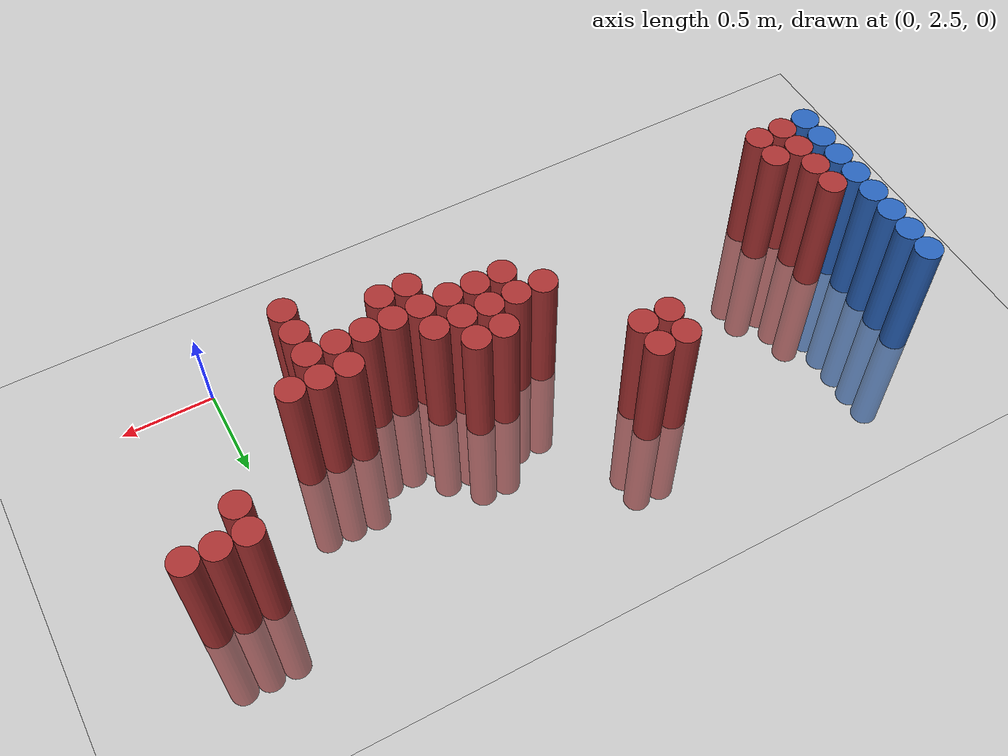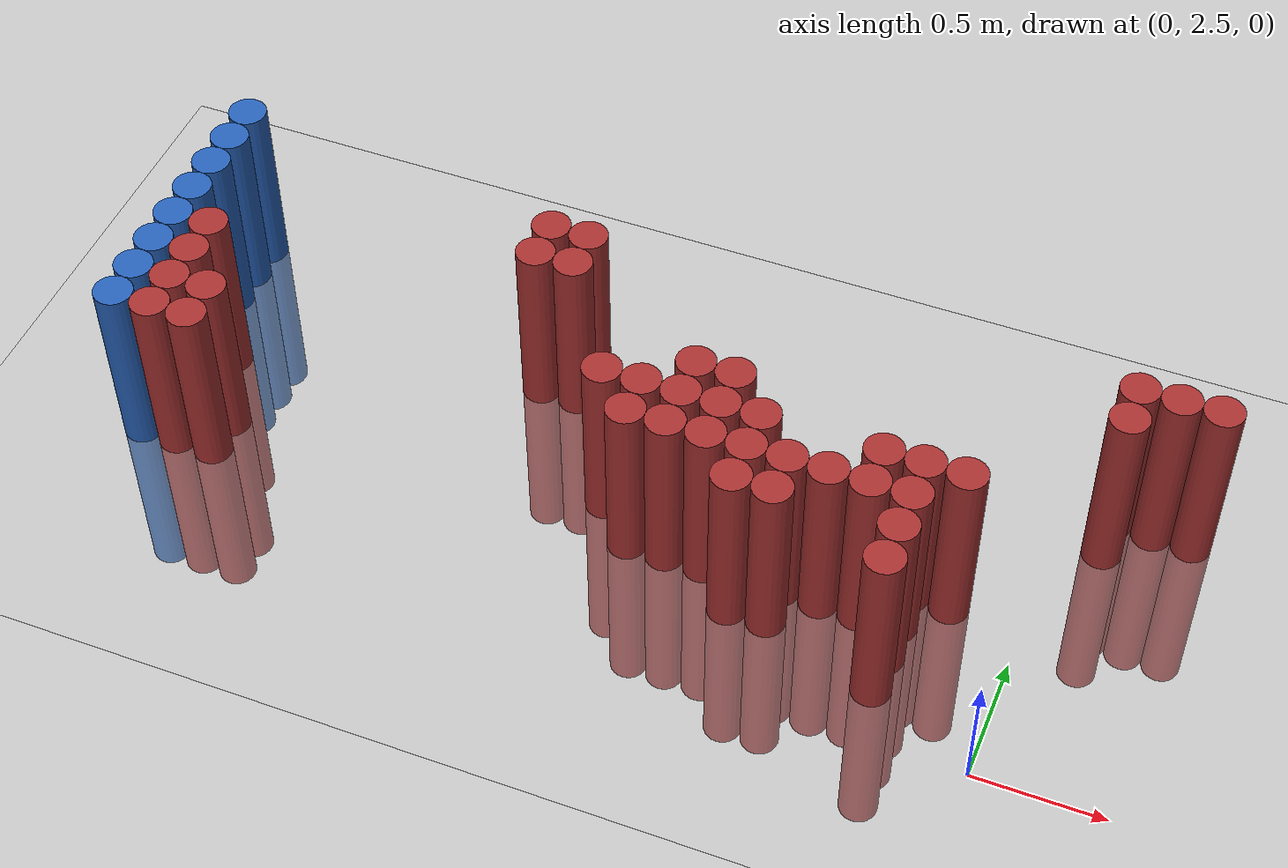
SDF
<sdf version="1.6">
 <world name="default">
  <model name="ground_plane">
   <static>1</static>
   <link name="link">
    <collision name="collision">
     <geometry><plane><normal>0 0 1</normal><size>100 100</size></plane></geometry>
     <surface><friction><ode><mu>100</mu><mu2>50</mu2></ode></friction></surface>
    </collision>
    <visual name="visual">
     <cast_shadows>0</cast_shadows>
     <geometry><plane><normal>0 0 1</normal><size>100 100</size></plane></geometry>
     <material>
      <script><uri>file://media/materials/scripts/gazebo.material</uri><name>Gazebo/Grey</name></script>
     </material>
    </visual>
   </link>
  </model>
  <model name="unit_cylinder_153">
   <static>1</static>
   <pose>-3.425000 2.875000 0.000000 0.000000 0.000000 0.000000</pose>
   <link name="link">
    <inertial>
     <mass>1</mass>
     <inertia><ixx>0.145833</ixx><ixy>0</ixy><ixz>0</ixz><iyy>0.145833</iyy><iyz>0</iyz><izz>0.125</izz></inertia>
    </inertial>
    <collision name="collision">
     <geometry><cylinder><radius>0.075000</radius><length>1.5</length></cylinder></geometry>
    </collision>
    <visual name="visual">
     <geometry><cylinder><radius>0.075000</radius><length>1.5</length></cylinder></geometry>
     <material>
      <ambient>0.152000 0.379000 0.720000 1</ambient>
      <diffuse>0.152000 0.379000 0.720000 1</diffuse>
     </material>
     <material>
      <script><name>Gazebo/Grey</name><uri>file://media/materials/scripts/gazebo.material</uri></script>
     </material>
    </visual>
   </link>
  </model>
  <model name="unit_cylinder_155">
   <static>1</static>
   <pose>-3.425000 3.025000 0.000000 0.000000 0.000000 0.000000</pose>
   <link name="link">
    <inertial>
     <mass>1</mass>
     <inertia><ixx>0.145833</ixx><ixy>0</ixy><ixz>0</ixz><iyy>0.145833</iyy><iyz>0</iyz><izz>0.125</izz></inertia>
    </inertial>
    <collision name="collision">
     <geometry><cylinder><radius>0.075000</radius><length>1.5</length></cylinder></geometry>
    </collision>
    <visual name="visual">
     <geometry><cylinder><radius>0.075000</radius><length>1.5</length></cylinder></geometry>
     <material>
      <ambient>0.152000 0.379000 0.720000 1</ambient>
      <diffuse>0.152000 0.379000 0.720000 1</diffuse>
     </material>
     <material>
      <script><name>Gazebo/Grey</name><uri>file://media/materials/scripts/gazebo.material</uri></script>
     </material>
    </visual>
   </link>
  </model>
  <model name="unit_cylinder_157">
   <static>1</static>
   <pose>-3.425000 3.175000 0.000000 0.000000 0.000000 0.000000</pose>
   <link name="link">
    <inertial>
     <mass>1</mass>
     <inertia><ixx>0.145833</ixx><ixy>0</ixy><ixz>0</ixz><iyy>0.145833</iyy><iyz>0</iyz><izz>0.125</izz></inertia>
    </inertial>
    <collision name="collision">
     <geometry><cylinder><radius>0.075000</radius><length>1.5</length></cylinder></geometry>
    </collision>
    <visual name="visual">
     <geometry><cylinder><radius>0.075000</radius><length>1.5</length></cylinder></geometry>
     <material>
      <ambient>0.152000 0.379000 0.720000 1</ambient>
      <diffuse>0.152000 0.379000 0.720000 1</diffuse>
     </material>
     <material>
      <script><name>Gazebo/Grey</name><uri>file://media/materials/scripts/gazebo.material</uri></script>
     </material>
    </visual>
   </link>
  </model>
  <model name="unit_cylinder_159">
   <static>1</static>
   <pose>-3.425000 3.325000 0.000000 0.000000 0.000000 0.000000</pose>
   <link name="link">
    <inertial>
     <mass>1</mass>
     <inertia><ixx>0.145833</ixx><ixy>0</ixy><ixz>0</ixz><iyy>0.145833</iyy><iyz>0</iyz><izz>0.125</izz></inertia>
    </inertial>
    <collision name="collision">
     <geometry><cylinder><radius>0.075000</radius><length>1.5</length></cylinder></geometry>
    </collision>
    <visual name="visual">
     <geometry><cylinder><radius>0.075000</radius><length>1.5</length></cylinder></geometry>
     <material>
      <ambient>0.152000 0.379000 0.720000 1</ambient>
      <diffuse>0.152000 0.379000 0.720000 1</diffuse>
     </material>
     <material>
      <script><name>Gazebo/Grey</name><uri>file://media/materials/scripts/gazebo.material</uri></script>
     </material>
    </visual>
   </link>
  </model>
  <model name="unit_cylinder_161">
   <static>1</static>
   <pose>-3.425000 3.475000 0.000000 0.000000 0.000000 0.000000</pose>
   <link name="link">
    <inertial>
     <mass>1</mass>
     <inertia><ixx>0.145833</ixx><ixy>0</ixy><ixz>0</ixz><iyy>0.145833</iyy><iyz>0</iyz><izz>0.125</izz></inertia>
    </inertial>
    <collision name="collision">
     <geometry><cylinder><radius>0.075000</radius><length>1.5</length></cylinder></geometry>
    </collision>
    <visual name="visual">
     <geometry><cylinder><radius>0.075000</radius><length>1.5</length></cylinder></geometry>
     <material>
      <ambient>0.152000 0.379000 0.720000 1</ambient>
      <diffuse>0.152000 0.379000 0.720000 1</diffuse>
     </material>
     <material>
      <script><name>Gazebo/Grey</name><uri>file://media/materials/scripts/gazebo.material</uri></script>
     </material>
    </visual>
   </link>
  </model>
  <model name="unit_cylinder_163">
   <static>1</static>
   <pose>-3.425000 3.625000 0.000000 0.000000 0.000000 0.000000</pose>
   <link name="link">
    <inertial>
     <mass>1</mass>
     <inertia><ixx>0.145833</ixx><ixy>0</ixy><ixz>0</ixz><iyy>0.145833</iyy><iyz>0</iyz><izz>0.125</izz></inertia>
    </inertial>
    <collision name="collision">
     <geometry><cylinder><radius>0.075000</radius><length>1.5</length></cylinder></geometry>
    </collision>
    <visual name="visual">
     <geometry><cylinder><radius>0.075000</radius><length>1.5</length></cylinder></geometry>
     <material>
      <ambient>0.152000 0.379000 0.720000 1</ambient>
      <diffuse>0.152000 0.379000 0.720000 1</diffuse>
     </material>
     <material>
      <script><name>Gazebo/Grey</name><uri>file://media/materials/scripts/gazebo.material</uri></script>
     </material>
    </visual>
   </link>
  </model>
  <model name="unit_cylinder_165">
   <static>1</static>
   <pose>-3.425000 3.775000 0.000000 0.000000 0.000000 0.000000</pose>
   <link name="link">
    <inertial>
     <mass>1</mass>
     <inertia><ixx>0.145833</ixx><ixy>0</ixy><ixz>0</ixz><iyy>0.145833</iyy><iyz>0</iyz><izz>0.125</izz></inertia>
    </inertial>
    <collision name="collision">
     <geometry><cylinder><radius>0.075000</radius><length>1.5</length></cylinder></geometry>
    </collision>
    <visual name="visual">
     <geometry><cylinder><radius>0.075000</radius><length>1.5</length></cylinder></geometry>
     <material>
      <ambient>0.152000 0.379000 0.720000 1</ambient>
      <diffuse>0.152000 0.379000 0.720000 1</diffuse>
     </material>
     <material>
      <script><name>Gazebo/Grey</name><uri>file://media/materials/scripts/gazebo.material</uri></script>
     </material>
    </visual>
   </link>
  </model>
  <model name="unit_cylinder_167">
   <static>1</static>
   <pose>-3.425000 3.925000 0.000000 0.000000 0.000000 0.000000</pose>
   <link name="link">
    <inertial>
     <mass>1</mass>
     <inertia><ixx>0.145833</ixx><ixy>0</ixy><ixz>0</ixz><iyy>0.145833</iyy><iyz>0</iyz><izz>0.125</izz></inertia>
    </inertial>
    <collision name="collision">
     <geometry><cylinder><radius>0.075000</radius><length>1.5</length></cylinder></geometry>
    </collision>
    <visual name="visual">
     <geometry><cylinder><radius>0.075000</radius><length>1.5</length></cylinder></geometry>
     <material>
      <ambient>0.152000 0.379000 0.720000 1</ambient>
      <diffuse>0.152000 0.379000 0.720000 1</diffuse>
     </material>
     <material>
      <script><name>Gazebo/Grey</name><uri>file://media/materials/scripts/gazebo.material</uri></script>
     </material>
    </visual>
   </link>
  </model>
  <model name="unit_cylinder_240">
   <static>1</static>
   <pose>-3.425000 2.875000 0.000000 0.000000 0.000000 0.000000</pose>
   <link name="link">
    <inertial>
     <mass>1</mass>
     <inertia><ixx>0.145833</ixx><ixy>0</ixy><ixz>0</ixz><iyy>0.145833</iyy><iyz>0</iyz><izz>0.125</izz></inertia>
    </inertial>
    <collision name="collision">
     <geometry><cylinder><radius>0.075000</radius><length>1.5</length></cylinder></geometry>
    </collision>
    <visual name="visual">
     <geometry><cylinder><radius>0.075000</radius><length>1.5</length></cylinder></geometry>
     <material>
      <ambient>0.152000 0.379000 0.720000 1</ambient>
      <diffuse>0.152000 0.379000 0.720000 1</diffuse>
     </material>
     <material>
      <script><name>Gazebo/Grey</name><uri>file://media/materials/scripts/gazebo.material</uri></script>
     </material>
    </visual>
   </link>
  </model>
  <model name="unit_cylinder_241">
   <static>1</static>
   <pose>-3.425000 3.025000 0.000000 0.000000 0.000000 0.000000</pose>
   <link name="link">
    <inertial>
     <mass>1</mass>
     <inertia><ixx>0.145833</ixx><ixy>0</ixy><ixz>0</ixz><iyy>0.145833</iyy><iyz>0</iyz><izz>0.125</izz></inertia>
    </inertial>
    <collision name="collision">
     <geometry><cylinder><radius>0.075000</radius><length>1.5</length></cylinder></geometry>
    </collision>
    <visual name="visual">
     <geometry><cylinder><radius>0.075000</radius><length>1.5</length></cylinder></geometry>
     <material>
      <ambient>0.152000 0.379000 0.720000 1</ambient>
      <diffuse>0.152000 0.379000 0.720000 1</diffuse>
     </material>
     <material>
      <script><name>Gazebo/Grey</name><uri>file://media/materials/scripts/gazebo.material</uri></script>
     </material>
    </visual>
   </link>
  </model>
  <model name="unit_cylinder_242">
   <static>1</static>
   <pose>-3.425000 3.175000 0.000000 0.000000 0.000000 0.000000</pose>
   <link name="link">
    <inertial>
     <mass>1</mass>
     <inertia><ixx>0.145833</ixx><ixy>0</ixy><ixz>0</ixz><iyy>0.145833</iyy><iyz>0</iyz><izz>0.125</izz></inertia>
    </inertial>
    <collision name="collision">
     <geometry><cylinder><radius>0.075000</radius><length>1.5</length></cylinder></geometry>
    </collision>
    <visual name="visual">
     <geometry><cylinder><radius>0.075000</radius><length>1.5</length></cylinder></geometry>
     <material>
      <ambient>0.152000 0.379000 0.720000 1</ambient>
      <diffuse>0.152000 0.379000 0.720000 1</diffuse>
     </material>
     <material>
      <script><name>Gazebo/Grey</name><uri>file://media/materials/scripts/gazebo.material</uri></script>
     </material>
    </visual>
   </link>
  </model>
  <model name="unit_cylinder_243">
   <static>1</static>
   <pose>-3.425000 3.325000 0.000000 0.000000 0.000000 0.000000</pose>
   <link name="link">
    <inertial>
     <mass>1</mass>
     <inertia><ixx>0.145833</ixx><ixy>0</ixy><ixz>0</ixz><iyy>0.145833</iyy><iyz>0</iyz><izz>0.125</izz></inertia>
    </inertial>
    <collision name="collision">
     <geometry><cylinder><radius>0.075000</radius><length>1.5</length></cylinder></geometry>
    </collision>
    <visual name="visual">
     <geometry><cylinder><radius>0.075000</radius><length>1.5</length></cylinder></geometry>
     <material>
      <ambient>0.152000 0.379000 0.720000 1</ambient>
      <diffuse>0.152000 0.379000 0.720000 1</diffuse>
     </material>
     <material>
      <script><name>Gazebo/Grey</name><uri>file://media/materials/scripts/gazebo.material</uri></script>
     </material>
    </visual>
   </link>
  </model>
  <model name="unit_cylinder_244">
   <static>1</static>
   <pose>-3.425000 3.475000 0.000000 0.000000 0.000000 0.000000</pose>
   <link name="link">
    <inertial>
     <mass>1</mass>
     <inertia><ixx>0.145833</ixx><ixy>0</ixy><ixz>0</ixz><iyy>0.145833</iyy><iyz>0</iyz><izz>0.125</izz></inertia>
    </inertial>
    <collision name="collision">
     <geometry><cylinder><radius>0.075000</radius><length>1.5</length></cylinder></geometry>
    </collision>
    <visual name="visual">
     <geometry><cylinder><radius>0.075000</radius><length>1.5</length></cylinder></geometry>
     <material>
      <ambient>0.152000 0.379000 0.720000 1</ambient>
      <diffuse>0.152000 0.379000 0.720000 1</diffuse>
     </material>
     <material>
      <script><name>Gazebo/Grey</name><uri>file://media/materials/scripts/gazebo.material</uri></script>
     </material>
    </visual>
   </link>
  </model>
  <model name="unit_cylinder_245">
   <static>1</static>
   <pose>-3.425000 3.625000 0.000000 0.000000 0.000000 0.000000</pose>
   <link name="link">
    <inertial>
     <mass>1</mass>
     <inertia><ixx>0.145833</ixx><ixy>0</ixy><ixz>0</ixz><iyy>0.145833</iyy><iyz>0</iyz><izz>0.125</izz></inertia>
    </inertial>
    <collision name="collision">
     <geometry><cylinder><radius>0.075000</radius><length>1.5</length></cylinder></geometry>
    </collision>
    <visual name="visual">
     <geometry><cylinder><radius>0.075000</radius><length>1.5</length></cylinder></geometry>
     <material>
      <ambient>0.152000 0.379000 0.720000 1</ambient>
      <diffuse>0.152000 0.379000 0.720000 1</diffuse>
     </material>
     <material>
      <script><name>Gazebo/Grey</name><uri>file://media/materials/scripts/gazebo.material</uri></script>
     </material>
    </visual>
   </link>
  </model>
  <model name="unit_cylinder_246">
   <static>1</static>
   <pose>-3.425000 3.775000 0.000000 0.000000 0.000000 0.000000</pose>
   <link name="link">
    <inertial>
     <mass>1</mass>
     <inertia><ixx>0.145833</ixx><ixy>0</ixy><ixz>0</ixz><iyy>0.145833</iyy><iyz>0</iyz><izz>0.125</izz></inertia>
    </inertial>
    <collision name="collision">
     <geometry><cylinder><radius>0.075000</radius><length>1.5</length></cylinder></geometry>
    </collision>
    <visual name="visual">
     <geometry><cylinder><radius>0.075000</radius><length>1.5</length></cylinder></geometry>
     <material>
      <ambient>0.152000 0.379000 0.720000 1</ambient>
      <diffuse>0.152000 0.379000 0.720000 1</diffuse>
     </material>
     <material>
      <script><name>Gazebo/Grey</name><uri>file://media/materials/scripts/gazebo.material</uri></script>
     </material>
    </visual>
   </link>
  </model>
  <model name="unit_cylinder_276">
   <static>1</static>
   <pose>-3.275000 2.875000 0.000000 0.000000 0.000000 0.000000</pose>
   <link name="link">
    <inertial>
     <mass>1</mass>
     <inertia><ixx>0.145833</ixx><ixy>0</ixy><ixz>0</ixz><iyy>0.145833</iyy><iyz>0</iyz><izz>0.125</izz></inertia>
    </inertial>
    <collision name="collision">
     <geometry><cylinder><radius>0.075000</radius><length>1.5</length></cylinder></geometry>
    </collision>
    <visual name="visual">
     <geometry><cylinder><radius>0.075000</radius><length>1.5</length></cylinder></geometry>
     <material>
      <ambient>0.648000 0.192000 0.192000 1</ambient>
      <diffuse>0.648000 0.192000 0.192000 1</diffuse>
     </material>
     <material>
      <script><name>Gazebo/Grey</name><uri>file://media/materials/scripts/gazebo.material</uri></script>
     </material>
    </visual>
   </link>
  </model>
  <model name="unit_cylinder_277">
   <static>1</static>
   <pose>-3.275000 3.025000 0.000000 0.000000 0.000000 0.000000</pose>
   <link name="link">
    <inertial>
     <mass>1</mass>
     <inertia><ixx>0.145833</ixx><ixy>0</ixy><ixz>0</ixz><iyy>0.145833</iyy><iyz>0</iyz><izz>0.125</izz></inertia>
    </inertial>
    <collision name="collision">
     <geometry><cylinder><radius>0.075000</radius><length>1.5</length></cylinder></geometry>
    </collision>
    <visual name="visual">
     <geometry><cylinder><radius>0.075000</radius><length>1.5</length></cylinder></geometry>
     <material>
      <ambient>0.648000 0.192000 0.192000 1</ambient>
      <diffuse>0.648000 0.192000 0.192000 1</diffuse>
     </material>
     <material>
      <script><name>Gazebo/Grey</name><uri>file://media/materials/scripts/gazebo.material</uri></script>
     </material>
    </visual>
   </link>
  </model>
  <model name="unit_cylinder_278">
   <static>1</static>
   <pose>-3.275000 3.175000 0.000000 0.000000 0.000000 0.000000</pose>
   <link name="link">
    <inertial>
     <mass>1</mass>
     <inertia><ixx>0.145833</ixx><ixy>0</ixy><ixz>0</ixz><iyy>0.145833</iyy><iyz>0</iyz><izz>0.125</izz></inertia>
    </inertial>
    <collision name="collision">
     <geometry><cylinder><radius>0.075000</radius><length>1.5</length></cylinder></geometry>
    </collision>
    <visual name="visual">
     <geometry><cylinder><radius>0.075000</radius><length>1.5</length></cylinder></geometry>
     <material>
      <ambient>0.648000 0.192000 0.192000 1</ambient>
      <diffuse>0.648000 0.192000 0.192000 1</diffuse>
     </material>
     <material>
      <script><name>Gazebo/Grey</name><uri>file://media/materials/scripts/gazebo.material</uri></script>
     </material>
    </visual>
   </link>
  </model>
  <model name="unit_cylinder_279">
   <static>1</static>
   <pose>-3.275000 3.325000 0.000000 0.000000 0.000000 0.000000</pose>
   <link name="link">
    <inertial>
     <mass>1</mass>
     <inertia><ixx>0.145833</ixx><ixy>0</ixy><ixz>0</ixz><iyy>0.145833</iyy><iyz>0</iyz><izz>0.125</izz></inertia>
    </inertial>
    <collision name="collision">
     <geometry><cylinder><radius>0.075000</radius><length>1.5</length></cylinder></geometry>
    </collision>
    <visual name="visual">
     <geometry><cylinder><radius>0.075000</radius><length>1.5</length></cylinder></geometry>
     <material>
      <ambient>0.648000 0.192000 0.192000 1</ambient>
      <diffuse>0.648000 0.192000 0.192000 1</diffuse>
     </material>
     <material>
      <script><name>Gazebo/Grey</name><uri>file://media/materials/scripts/gazebo.material</uri></script>
     </material>
    </visual>
   </link>
  </model>
  <model name="unit_cylinder_285">
   <static>1</static>
   <pose>-3.125000 2.875000 0.000000 0.000000 0.000000 0.000000</pose>
   <link name="link">
    <inertial>
     <mass>1</mass>
     <inertia><ixx>0.145833</ixx><ixy>0</ixy><ixz>0</ixz><iyy>0.145833</iyy><iyz>0</iyz><izz>0.125</izz></inertia>
    </inertial>
    <collision name="collision">
     <geometry><cylinder><radius>0.075000</radius><length>1.5</length></cylinder></geometry>
    </collision>
    <visual name="visual">
     <geometry><cylinder><radius>0.075000</radius><length>1.5</length></cylinder></geometry>
     <material>
      <ambient>0.648000 0.192000 0.192000 1</ambient>
      <diffuse>0.648000 0.192000 0.192000 1</diffuse>
     </material>
     <material>
      <script><name>Gazebo/Grey</name><uri>file://media/materials/scripts/gazebo.material</uri></script>
     </material>
    </visual>
   </link>
  </model>
  <model name="unit_cylinder_286">
   <static>1</static>
   <pose>-3.125000 3.025000 0.000000 0.000000 0.000000 0.000000</pose>
   <link name="link">
    <inertial>
     <mass>1</mass>
     <inertia><ixx>0.145833</ixx><ixy>0</ixy><ixz>0</ixz><iyy>0.145833</iyy><iyz>0</iyz><izz>0.125</izz></inertia>
    </inertial>
    <collision name="collision">
     <geometry><cylinder><radius>0.075000</radius><length>1.5</length></cylinder></geometry>
    </collision>
    <visual name="visual">
     <geometry><cylinder><radius>0.075000</radius><length>1.5</length></cylinder></geometry>
     <material>
      <ambient>0.648000 0.192000 0.192000 1</ambient>
      <diffuse>0.648000 0.192000 0.192000 1</diffuse>
     </material>
     <material>
      <script><name>Gazebo/Grey</name><uri>file://media/materials/scripts/gazebo.material</uri></script>
     </material>
    </visual>
   </link>
  </model>
  <model name="unit_cylinder_304">
   <static>1</static>
   <pose>-2.075000 3.625000 0.000000 0.000000 0.000000 0.000000</pose>
   <link name="link">
    <inertial>
     <mass>1</mass>
     <inertia><ixx>0.145833</ixx><ixy>0</ixy><ixz>0</ixz><iyy>0.145833</iyy><iyz>0</iyz><izz>0.125</izz></inertia>
    </inertial>
    <collision name="collision">
     <geometry><cylinder><radius>0.075000</radius><length>1.5</length></cylinder></geometry>
    </collision>
    <visual name="visual">
     <geometry><cylinder><radius>0.075000</radius><length>1.5</length></cylinder></geometry>
     <material>
      <ambient>0.648000 0.192000 0.192000 1</ambient>
      <diffuse>0.648000 0.192000 0.192000 1</diffuse>
     </material>
     <material>
      <script><name>Gazebo/Grey</name><uri>file://media/materials/scripts/gazebo.material</uri></script>
     </material>
    </visual>
   </link>
  </model>
  <model name="unit_cylinder_305">
   <static>1</static>
   <pose>-2.075000 3.775000 0.000000 0.000000 0.000000 0.000000</pose>
   <link name="link">
    <inertial>
     <mass>1</mass>
     <inertia><ixx>0.145833</ixx><ixy>0</ixy><ixz>0</ixz><iyy>0.145833</iyy><iyz>0</iyz><izz>0.125</izz></inertia>
    </inertial>
    <collision name="collision">
     <geometry><cylinder><radius>0.075000</radius><length>1.5</length></cylinder></geometry>
    </collision>
    <visual name="visual">
     <geometry><cylinder><radius>0.075000</radius><length>1.5</length></cylinder></geometry>
     <material>
      <ambient>0.648000 0.192000 0.192000 1</ambient>
      <diffuse>0.648000 0.192000 0.192000 1</diffuse>
     </material>
     <material>
      <script><name>Gazebo/Grey</name><uri>file://media/materials/scripts/gazebo.material</uri></script>
     </material>
    </visual>
   </link>
  </model>
  <model name="unit_cylinder_313">
   <static>1</static>
   <pose>-1.925000 3.625000 0.000000 0.000000 0.000000 0.000000</pose>
   <link name="link">
    <inertial>
     <mass>1</mass>
     <inertia><ixx>0.145833</ixx><ixy>0</ixy><ixz>0</ixz><iyy>0.145833</iyy><iyz>0</iyz><izz>0.125</izz></inertia>
    </inertial>
    <collision name="collision">
     <geometry><cylinder><radius>0.075000</radius><length>1.5</length></cylinder></geometry>
    </collision>
    <visual name="visual">
     <geometry><cylinder><radius>0.075000</radius><length>1.5</length></cylinder></geometry>
     <material>
      <ambient>0.648000 0.192000 0.192000 1</ambient>
      <diffuse>0.648000 0.192000 0.192000 1</diffuse>
     </material>
     <material>
      <script><name>Gazebo/Grey</name><uri>file://media/materials/scripts/gazebo.material</uri></script>
     </material>
    </visual>
   </link>
  </model>
  <model name="unit_cylinder_314">
   <static>1</static>
   <pose>-1.925000 3.775000 0.000000 0.000000 0.000000 0.000000</pose>
   <link name="link">
    <inertial>
     <mass>1</mass>
     <inertia><ixx>0.145833</ixx><ixy>0</ixy><ixz>0</ixz><iyy>0.145833</iyy><iyz>0</iyz><izz>0.125</izz></inertia>
    </inertial>
    <collision name="collision">
     <geometry><cylinder><radius>0.075000</radius><length>1.5</length></cylinder></geometry>
    </collision>
    <visual name="visual">
     <geometry><cylinder><radius>0.075000</radius><length>1.5</length></cylinder></geometry>
     <material>
      <ambient>0.648000 0.192000 0.192000 1</ambient>
      <diffuse>0.648000 0.192000 0.192000 1</diffuse>
     </material>
     <material>
      <script><name>Gazebo/Grey</name><uri>file://media/materials/scripts/gazebo.material</uri></script>
     </material>
    </visual>
   </link>
  </model>
  <model name="unit_cylinder_321">
   <static>1</static>
   <pose>-1.625000 3.175000 0.000000 0.000000 0.000000 0.000000</pose>
   <link name="link">
    <inertial>
     <mass>1</mass>
     <inertia><ixx>0.145833</ixx><ixy>0</ixy><ixz>0</ixz><iyy>0.145833</iyy><iyz>0</iyz><izz>0.125</izz></inertia>
    </inertial>
    <collision name="collision">
     <geometry><cylinder><radius>0.075000</radius><length>1.5</length></cylinder></geometry>
    </collision>
    <visual name="visual">
     <geometry><cylinder><radius>0.075000</radius><length>1.5</length></cylinder></geometry>
     <material>
      <ambient>0.648000 0.192000 0.192000 1</ambient>
      <diffuse>0.648000 0.192000 0.192000 1</diffuse>
     </material>
     <material>
      <script><name>Gazebo/Grey</name><uri>file://media/materials/scripts/gazebo.material</uri></script>
     </material>
    </visual>
   </link>
  </model>
  <model name="unit_cylinder_326">
   <static>1</static>
   <pose>-1.475000 3.025000 0.000000 0.000000 0.000000 0.000000</pose>
   <link name="link">
    <inertial>
     <mass>1</mass>
     <inertia><ixx>0.145833</ixx><ixy>0</ixy><ixz>0</ixz><iyy>0.145833</iyy><iyz>0</iyz><izz>0.125</izz></inertia>
    </inertial>
    <collision name="collision">
     <geometry><cylinder><radius>0.075000</radius><length>1.5</length></cylinder></geometry>
    </collision>
    <visual name="visual">
     <geometry><cylinder><radius>0.075000</radius><length>1.5</length></cylinder></geometry>
     <material>
      <ambient>0.648000 0.192000 0.192000 1</ambient>
      <diffuse>0.648000 0.192000 0.192000 1</diffuse>
     </material>
     <material>
      <script><name>Gazebo/Grey</name><uri>file://media/materials/scripts/gazebo.material</uri></script>
     </material>
    </visual>
   </link>
  </model>
  <model name="unit_cylinder_327">
   <static>1</static>
   <pose>-1.475000 3.175000 0.000000 0.000000 0.000000 0.000000</pose>
   <link name="link">
    <inertial>
     <mass>1</mass>
     <inertia><ixx>0.145833</ixx><ixy>0</ixy><ixz>0</ixz><iyy>0.145833</iyy><iyz>0</iyz><izz>0.125</izz></inertia>
    </inertial>
    <collision name="collision">
     <geometry><cylinder><radius>0.075000</radius><length>1.5</length></cylinder></geometry>
    </collision>
    <visual name="visual">
     <geometry><cylinder><radius>0.075000</radius><length>1.5</length></cylinder></geometry>
     <material>
      <ambient>0.648000 0.192000 0.192000 1</ambient>
      <diffuse>0.648000 0.192000 0.192000 1</diffuse>
     </material>
     <material>
      <script><name>Gazebo/Grey</name><uri>file://media/materials/scripts/gazebo.material</uri></script>
     </material>
    </visual>
   </link>
  </model>
  <model name="unit_cylinder_334">
   <static>1</static>
   <pose>-1.325000 3.025000 0.000000 0.000000 0.000000 0.000000</pose>
   <link name="link">
    <inertial>
     <mass>1</mass>
     <inertia><ixx>0.145833</ixx><ixy>0</ixy><ixz>0</ixz><iyy>0.145833</iyy><iyz>0</iyz><izz>0.125</izz></inertia>
    </inertial>
    <collision name="collision">
     <geometry><cylinder><radius>0.075000</radius><length>1.5</length></cylinder></geometry>
    </collision>
    <visual name="visual">
     <geometry><cylinder><radius>0.075000</radius><length>1.5</length></cylinder></geometry>
     <material>
      <ambient>0.648000 0.192000 0.192000 1</ambient>
      <diffuse>0.648000 0.192000 0.192000 1</diffuse>
     </material>
     <material>
      <script><name>Gazebo/Grey</name><uri>file://media/materials/scripts/gazebo.material</uri></script>
     </material>
    </visual>
   </link>
  </model>
  <model name="unit_cylinder_335">
   <static>1</static>
   <pose>-1.325000 3.175000 0.000000 0.000000 0.000000 0.000000</pose>
   <link name="link">
    <inertial>
     <mass>1</mass>
     <inertia><ixx>0.145833</ixx><ixy>0</ixy><ixz>0</ixz><iyy>0.145833</iyy><iyz>0</iyz><izz>0.125</izz></inertia>
    </inertial>
    <collision name="collision">
     <geometry><cylinder><radius>0.075000</radius><length>1.5</length></cylinder></geometry>
    </collision>
    <visual name="visual">
     <geometry><cylinder><radius>0.075000</radius><length>1.5</length></cylinder></geometry>
     <material>
      <ambient>0.648000 0.192000 0.192000 1</ambient>
      <diffuse>0.648000 0.192000 0.192000 1</diffuse>
     </material>
     <material>
      <script><name>Gazebo/Grey</name><uri>file://media/materials/scripts/gazebo.material</uri></script>
     </material>
    </visual>
   </link>
  </model>
  <model name="unit_cylinder_336">
   <static>1</static>
   <pose>-1.325000 3.325000 0.000000 0.000000 0.000000 0.000000</pose>
   <link name="link">
    <inertial>
     <mass>1</mass>
     <inertia><ixx>0.145833</ixx><ixy>0</ixy><ixz>0</ixz><iyy>0.145833</iyy><iyz>0</iyz><izz>0.125</izz></inertia>
    </inertial>
    <collision name="collision">
     <geometry><cylinder><radius>0.075000</radius><length>1.5</length></cylinder></geometry>
    </collision>
    <visual name="visual">
     <geometry><cylinder><radius>0.075000</radius><length>1.5</length></cylinder></geometry>
     <material>
      <ambient>0.648000 0.192000 0.192000 1</ambient>
      <diffuse>0.648000 0.192000 0.192000 1</diffuse>
     </material>
     <material>
      <script><name>Gazebo/Grey</name><uri>file://media/materials/scripts/gazebo.material</uri></script>
     </material>
    </visual>
   </link>
  </model>
  <model name="unit_cylinder_346">
   <static>1</static>
   <pose>-1.175000 3.025000 0.000000 0.000000 0.000000 0.000000</pose>
   <link name="link">
    <inertial>
     <mass>1</mass>
     <inertia><ixx>0.145833</ixx><ixy>0</ixy><ixz>0</ixz><iyy>0.145833</iyy><iyz>0</iyz><izz>0.125</izz></inertia>
    </inertial>
    <collision name="collision">
     <geometry><cylinder><radius>0.075000</radius><length>1.5</length></cylinder></geometry>
    </collision>
    <visual name="visual">
     <geometry><cylinder><radius>0.075000</radius><length>1.5</length></cylinder></geometry>
     <material>
      <ambient>0.648000 0.192000 0.192000 1</ambient>
      <diffuse>0.648000 0.192000 0.192000 1</diffuse>
     </material>
     <material>
      <script><name>Gazebo/Grey</name><uri>file://media/materials/scripts/gazebo.material</uri></script>
     </material>
    </visual>
   </link>
  </model>
  <model name="unit_cylinder_347">
   <static>1</static>
   <pose>-1.175000 3.175000 0.000000 0.000000 0.000000 0.000000</pose>
   <link name="link">
    <inertial>
     <mass>1</mass>
     <inertia><ixx>0.145833</ixx><ixy>0</ixy><ixz>0</ixz><iyy>0.145833</iyy><iyz>0</iyz><izz>0.125</izz></inertia>
    </inertial>
    <collision name="collision">
     <geometry><cylinder><radius>0.075000</radius><length>1.5</length></cylinder></geometry>
    </collision>
    <visual name="visual">
     <geometry><cylinder><radius>0.075000</radius><length>1.5</length></cylinder></geometry>
     <material>
      <ambient>0.648000 0.192000 0.192000 1</ambient>
      <diffuse>0.648000 0.192000 0.192000 1</diffuse>
     </material>
     <material>
      <script><name>Gazebo/Grey</name><uri>file://media/materials/scripts/gazebo.material</uri></script>
     </material>
    </visual>
   </link>
  </model>
  <model name="unit_cylinder_348">
   <static>1</static>
   <pose>-1.175000 3.325000 0.000000 0.000000 0.000000 0.000000</pose>
   <link name="link">
    <inertial>
     <mass>1</mass>
     <inertia><ixx>0.145833</ixx><ixy>0</ixy><ixz>0</ixz><iyy>0.145833</iyy><iyz>0</iyz><izz>0.125</izz></inertia>
    </inertial>
    <collision name="collision">
     <geometry><cylinder><radius>0.075000</radius><length>1.5</length></cylinder></geometry>
    </collision>
    <visual name="visual">
     <geometry><cylinder><radius>0.075000</radius><length>1.5</length></cylinder></geometry>
     <material>
      <ambient>0.648000 0.192000 0.192000 1</ambient>
      <diffuse>0.648000 0.192000 0.192000 1</diffuse>
     </material>
     <material>
      <script><name>Gazebo/Grey</name><uri>file://media/materials/scripts/gazebo.material</uri></script>
     </material>
    </visual>
   </link>
  </model>
  <model name="unit_cylinder_355">
   <static>1</static>
   <pose>-1.025000 2.875000 0.000000 0.000000 0.000000 0.000000</pose>
   <link name="link">
    <inertial>
     <mass>1</mass>
     <inertia><ixx>0.145833</ixx><ixy>0</ixy><ixz>0</ixz><iyy>0.145833</iyy><iyz>0</iyz><izz>0.125</izz></inertia>
    </inertial>
    <collision name="collision">
     <geometry><cylinder><radius>0.075000</radius><length>1.5</length></cylinder></geometry>
    </collision>
    <visual name="visual">
     <geometry><cylinder><radius>0.075000</radius><length>1.5</length></cylinder></geometry>
     <material>
      <ambient>0.648000 0.192000 0.192000 1</ambient>
      <diffuse>0.648000 0.192000 0.192000 1</diffuse>
     </material>
     <material>
      <script><name>Gazebo/Grey</name><uri>file://media/materials/scripts/gazebo.material</uri></script>
     </material>
    </visual>
   </link>
  </model>
  <model name="unit_cylinder_356">
   <static>1</static>
   <pose>-1.025000 3.025000 0.000000 0.000000 0.000000 0.000000</pose>
   <link name="link">
    <inertial>
     <mass>1</mass>
     <inertia><ixx>0.145833</ixx><ixy>0</ixy><ixz>0</ixz><iyy>0.145833</iyy><iyz>0</iyz><izz>0.125</izz></inertia>
    </inertial>
    <collision name="collision">
     <geometry><cylinder><radius>0.075000</radius><length>1.5</length></cylinder></geometry>
    </collision>
    <visual name="visual">
     <geometry><cylinder><radius>0.075000</radius><length>1.5</length></cylinder></geometry>
     <material>
      <ambient>0.648000 0.192000 0.192000 1</ambient>
      <diffuse>0.648000 0.192000 0.192000 1</diffuse>
     </material>
     <material>
      <script><name>Gazebo/Grey</name><uri>file://media/materials/scripts/gazebo.material</uri></script>
     </material>
    </visual>
   </link>
  </model>
  <model name="unit_cylinder_357">
   <static>1</static>
   <pose>-1.025000 3.175000 0.000000 0.000000 0.000000 0.000000</pose>
   <link name="link">
    <inertial>
     <mass>1</mass>
     <inertia><ixx>0.145833</ixx><ixy>0</ixy><ixz>0</ixz><iyy>0.145833</iyy><iyz>0</iyz><izz>0.125</izz></inertia>
    </inertial>
    <collision name="collision">
     <geometry><cylinder><radius>0.075000</radius><length>1.5</length></cylinder></geometry>
    </collision>
    <visual name="visual">
     <geometry><cylinder><radius>0.075000</radius><length>1.5</length></cylinder></geometry>
     <material>
      <ambient>0.648000 0.192000 0.192000 1</ambient>
      <diffuse>0.648000 0.192000 0.192000 1</diffuse>
     </material>
     <material>
      <script><name>Gazebo/Grey</name><uri>file://media/materials/scripts/gazebo.material</uri></script>
     </material>
    </visual>
   </link>
  </model>
  <model name="unit_cylinder_360">
   <static>1</static>
   <pose>-0.875000 2.875000 0.000000 0.000000 0.000000 0.000000</pose>
   <link name="link">
    <inertial>
     <mass>1</mass>
     <inertia><ixx>0.145833</ixx><ixy>0</ixy><ixz>0</ixz><iyy>0.145833</iyy><iyz>0</iyz><izz>0.125</izz></inertia>
    </inertial>
    <collision name="collision">
     <geometry><cylinder><radius>0.075000</radius><length>1.5</length></cylinder></geometry>
    </collision>
    <visual name="visual">
     <geometry><cylinder><radius>0.075000</radius><length>1.5</length></cylinder></geometry>
     <material>
      <ambient>0.648000 0.192000 0.192000 1</ambient>
      <diffuse>0.648000 0.192000 0.192000 1</diffuse>
     </material>
     <material>
      <script><name>Gazebo/Grey</name><uri>file://media/materials/scripts/gazebo.material</uri></script>
     </material>
    </visual>
   </link>
  </model>
  <model name="unit_cylinder_361">
   <static>1</static>
   <pose>-0.875000 3.025000 0.000000 0.000000 0.000000 0.000000</pose>
   <link name="link">
    <inertial>
     <mass>1</mass>
     <inertia><ixx>0.145833</ixx><ixy>0</ixy><ixz>0</ixz><iyy>0.145833</iyy><iyz>0</iyz><izz>0.125</izz></inertia>
    </inertial>
    <collision name="collision">
     <geometry><cylinder><radius>0.075000</radius><length>1.5</length></cylinder></geometry>
    </collision>
    <visual name="visual">
     <geometry><cylinder><radius>0.075000</radius><length>1.5</length></cylinder></geometry>
     <material>
      <ambient>0.648000 0.192000 0.192000 1</ambient>
      <diffuse>0.648000 0.192000 0.192000 1</diffuse>
     </material>
     <material>
      <script><name>Gazebo/Grey</name><uri>file://media/materials/scripts/gazebo.material</uri></script>
     </material>
    </visual>
   </link>
  </model>
  <model name="unit_cylinder_366">
   <static>1</static>
   <pose>-0.725000 3.025000 0.000000 0.000000 0.000000 0.000000</pose>
   <link name="link">
    <inertial>
     <mass>1</mass>
     <inertia><ixx>0.145833</ixx><ixy>0</ixy><ixz>0</ixz><iyy>0.145833</iyy><iyz>0</iyz><izz>0.125</izz></inertia>
    </inertial>
    <collision name="collision">
     <geometry><cylinder><radius>0.075000</radius><length>1.5</length></cylinder></geometry>
    </collision>
    <visual name="visual">
     <geometry><cylinder><radius>0.075000</radius><length>1.5</length></cylinder></geometry>
     <material>
      <ambient>0.648000 0.192000 0.192000 1</ambient>
      <diffuse>0.648000 0.192000 0.192000 1</diffuse>
     </material>
     <material>
      <script><name>Gazebo/Grey</name><uri>file://media/materials/scripts/gazebo.material</uri></script>
     </material>
    </visual>
   </link>
  </model>
  <model name="unit_cylinder_372">
   <static>1</static>
   <pose>-0.575000 3.025000 0.000000 0.000000 0.000000 0.000000</pose>
   <link name="link">
    <inertial>
     <mass>1</mass>
     <inertia><ixx>0.145833</ixx><ixy>0</ixy><ixz>0</ixz><iyy>0.145833</iyy><iyz>0</iyz><izz>0.125</izz></inertia>
    </inertial>
    <collision name="collision">
     <geometry><cylinder><radius>0.075000</radius><length>1.5</length></cylinder></geometry>
    </collision>
    <visual name="visual">
     <geometry><cylinder><radius>0.075000</radius><length>1.5</length></cylinder></geometry>
     <material>
      <ambient>0.648000 0.192000 0.192000 1</ambient>
      <diffuse>0.648000 0.192000 0.192000 1</diffuse>
     </material>
     <material>
      <script><name>Gazebo/Grey</name><uri>file://media/materials/scripts/gazebo.material</uri></script>
     </material>
    </visual>
   </link>
  </model>
  <model name="unit_cylinder_373">
   <static>1</static>
   <pose>-0.575000 3.175000 0.000000 0.000000 0.000000 0.000000</pose>
   <link name="link">
    <inertial>
     <mass>1</mass>
     <inertia><ixx>0.145833</ixx><ixy>0</ixy><ixz>0</ixz><iyy>0.145833</iyy><iyz>0</iyz><izz>0.125</izz></inertia>
    </inertial>
    <collision name="collision">
     <geometry><cylinder><radius>0.075000</radius><length>1.5</length></cylinder></geometry>
    </collision>
    <visual name="visual">
     <geometry><cylinder><radius>0.075000</radius><length>1.5</length></cylinder></geometry>
     <material>
      <ambient>0.648000 0.192000 0.192000 1</ambient>
      <diffuse>0.648000 0.192000 0.192000 1</diffuse>
     </material>
     <material>
      <script><name>Gazebo/Grey</name><uri>file://media/materials/scripts/gazebo.material</uri></script>
     </material>
    </visual>
   </link>
  </model>
  <model name="unit_cylinder_376">
   <static>1</static>
   <pose>-0.425000 2.725000 0.000000 0.000000 0.000000 0.000000</pose>
   <link name="link">
    <inertial>
     <mass>1</mass>
     <inertia><ixx>0.145833</ixx><ixy>0</ixy><ixz>0</ixz><iyy>0.145833</iyy><iyz>0</iyz><izz>0.125</izz></inertia>
    </inertial>
    <collision name="collision">
     <geometry><cylinder><radius>0.075000</radius><length>1.5</length></cylinder></geometry>
    </collision>
    <visual name="visual">
     <geometry><cylinder><radius>0.075000</radius><length>1.5</length></cylinder></geometry>
     <material>
      <ambient>0.648000 0.192000 0.192000 1</ambient>
      <diffuse>0.648000 0.192000 0.192000 1</diffuse>
     </material>
     <material>
      <script><name>Gazebo/Grey</name><uri>file://media/materials/scripts/gazebo.material</uri></script>
     </material>
    </visual>
   </link>
  </model>
  <model name="unit_cylinder_377">
   <static>1</static>
   <pose>-0.425000 2.875000 0.000000 0.000000 0.000000 0.000000</pose>
   <link name="link">
    <inertial>
     <mass>1</mass>
     <inertia><ixx>0.145833</ixx><ixy>0</ixy><ixz>0</ixz><iyy>0.145833</iyy><iyz>0</iyz><izz>0.125</izz></inertia>
    </inertial>
    <collision name="collision">
     <geometry><cylinder><radius>0.075000</radius><length>1.5</length></cylinder></geometry>
    </collision>
    <visual name="visual">
     <geometry><cylinder><radius>0.075000</radius><length>1.5</length></cylinder></geometry>
     <material>
      <ambient>0.648000 0.192000 0.192000 1</ambient>
      <diffuse>0.648000 0.192000 0.192000 1</diffuse>
     </material>
     <material>
      <script><name>Gazebo/Grey</name><uri>file://media/materials/scripts/gazebo.material</uri></script>
     </material>
    </visual>
   </link>
  </model>
  <model name="unit_cylinder_378">
   <static>1</static>
   <pose>-0.425000 3.025000 0.000000 0.000000 0.000000 0.000000</pose>
   <link name="link">
    <inertial>
     <mass>1</mass>
     <inertia><ixx>0.145833</ixx><ixy>0</ixy><ixz>0</ixz><iyy>0.145833</iyy><iyz>0</iyz><izz>0.125</izz></inertia>
    </inertial>
    <collision name="collision">
     <geometry><cylinder><radius>0.075000</radius><length>1.5</length></cylinder></geometry>
    </collision>
    <visual name="visual">
     <geometry><cylinder><radius>0.075000</radius><length>1.5</length></cylinder></geometry>
     <material>
      <ambient>0.648000 0.192000 0.192000 1</ambient>
      <diffuse>0.648000 0.192000 0.192000 1</diffuse>
     </material>
     <material>
      <script><name>Gazebo/Grey</name><uri>file://media/materials/scripts/gazebo.material</uri></script>
     </material>
    </visual>
   </link>
  </model>
  <model name="unit_cylinder_379">
   <static>1</static>
   <pose>-0.425000 3.175000 0.000000 0.000000 0.000000 0.000000</pose>
   <link name="link">
    <inertial>
     <mass>1</mass>
     <inertia><ixx>0.145833</ixx><ixy>0</ixy><ixz>0</ixz><iyy>0.145833</iyy><iyz>0</iyz><izz>0.125</izz></inertia>
    </inertial>
    <collision name="collision">
     <geometry><cylinder><radius>0.075000</radius><length>1.5</length></cylinder></geometry>
    </collision>
    <visual name="visual">
     <geometry><cylinder><radius>0.075000</radius><length>1.5</length></cylinder></geometry>
     <material>
      <ambient>0.648000 0.192000 0.192000 1</ambient>
      <diffuse>0.648000 0.192000 0.192000 1</diffuse>
     </material>
     <material>
      <script><name>Gazebo/Grey</name><uri>file://media/materials/scripts/gazebo.material</uri></script>
     </material>
    </visual>
   </link>
  </model>
  <model name="unit_cylinder_381">
   <static>1</static>
   <pose>-0.275000 3.175000 0.000000 0.000000 0.000000 0.000000</pose>
   <link name="link">
    <inertial>
     <mass>1</mass>
     <inertia><ixx>0.145833</ixx><ixy>0</ixy><ixz>0</ixz><iyy>0.145833</iyy><iyz>0</iyz><izz>0.125</izz></inertia>
    </inertial>
    <collision name="collision">
     <geometry><cylinder><radius>0.075000</radius><length>1.5</length></cylinder></geometry>
    </collision>
    <visual name="visual">
     <geometry><cylinder><radius>0.075000</radius><length>1.5</length></cylinder></geometry>
     <material>
      <ambient>0.648000 0.192000 0.192000 1</ambient>
      <diffuse>0.648000 0.192000 0.192000 1</diffuse>
     </material>
     <material>
      <script><name>Gazebo/Grey</name><uri>file://media/materials/scripts/gazebo.material</uri></script>
     </material>
    </visual>
   </link>
  </model>
  <model name="unit_cylinder_388">
   <static>1</static>
   <pose>0.175000 3.625000 0.000000 0.000000 0.000000 0.000000</pose>
   <link name="link">
    <inertial>
     <mass>1</mass>
     <inertia><ixx>0.145833</ixx><ixy>0</ixy><ixz>0</ixz><iyy>0.145833</iyy><iyz>0</iyz><izz>0.125</izz></inertia>
    </inertial>
    <collision name="collision">
     <geometry><cylinder><radius>0.075000</radius><length>1.5</length></cylinder></geometry>
    </collision>
    <visual name="visual">
     <geometry><cylinder><radius>0.075000</radius><length>1.5</length></cylinder></geometry>
     <material>
      <ambient>0.648000 0.192000 0.192000 1</ambient>
      <diffuse>0.648000 0.192000 0.192000 1</diffuse>
     </material>
     <material>
      <script><name>Gazebo/Grey</name><uri>file://media/materials/scripts/gazebo.material</uri></script>
     </material>
    </visual>
   </link>
  </model>
  <model name="unit_cylinder_389">
   <static>1</static>
   <pose>0.175000 3.775000 0.000000 0.000000 0.000000 0.000000</pose>
   <link name="link">
    <inertial>
     <mass>1</mass>
     <inertia><ixx>0.145833</ixx><ixy>0</ixy><ixz>0</ixz><iyy>0.145833</iyy><iyz>0</iyz><izz>0.125</izz></inertia>
    </inertial>
    <collision name="collision">
     <geometry><cylinder><radius>0.075000</radius><length>1.5</length></cylinder></geometry>
    </collision>
    <visual name="visual">
     <geometry><cylinder><radius>0.075000</radius><length>1.5</length></cylinder></geometry>
     <material>
      <ambient>0.648000 0.192000 0.192000 1</ambient>
      <diffuse>0.648000 0.192000 0.192000 1</diffuse>
     </material>
     <material>
      <script><name>Gazebo/Grey</name><uri>file://media/materials/scripts/gazebo.material</uri></script>
     </material>
    </visual>
   </link>
  </model>
  <model name="unit_cylinder_392">
   <static>1</static>
   <pose>0.325000 3.775000 0.000000 0.000000 0.000000 0.000000</pose>
   <link name="link">
    <inertial>
     <mass>1</mass>
     <inertia><ixx>0.145833</ixx><ixy>0</ixy><ixz>0</ixz><iyy>0.145833</iyy><iyz>0</iyz><izz>0.125</izz></inertia>
    </inertial>
    <collision name="collision">
     <geometry><cylinder><radius>0.075000</radius><length>1.5</length></cylinder></geometry>
    </collision>
    <visual name="visual">
     <geometry><cylinder><radius>0.075000</radius><length>1.5</length></cylinder></geometry>
     <material>
      <ambient>0.648000 0.192000 0.192000 1</ambient>
      <diffuse>0.648000 0.192000 0.192000 1</diffuse>
     </material>
     <material>
      <script><name>Gazebo/Grey</name><uri>file://media/materials/scripts/gazebo.material</uri></script>
     </material>
    </visual>
   </link>
  </model>
  <model name="unit_cylinder_394">
   <static>1</static>
   <pose>0.475000 3.775000 0.000000 0.000000 0.000000 0.000000</pose>
   <link name="link">
    <inertial>
     <mass>1</mass>
     <inertia><ixx>0.145833</ixx><ixy>0</ixy><ixz>0</ixz><iyy>0.145833</iyy><iyz>0</iyz><izz>0.125</izz></inertia>
    </inertial>
    <collision name="collision">
     <geometry><cylinder><radius>0.075000</radius><length>1.5</length></cylinder></geometry>
    </collision>
    <visual name="visual">
     <geometry><cylinder><radius>0.075000</radius><length>1.5</length></cylinder></geometry>
     <material>
      <ambient>0.648000 0.192000 0.192000 1</ambient>
      <diffuse>0.648000 0.192000 0.192000 1</diffuse>
     </material>
     <material>
      <script><name>Gazebo/Grey</name><uri>file://media/materials/scripts/gazebo.material</uri></script>
     </material>
    </visual>
   </link>
  </model>
 </world>
</sdf>
